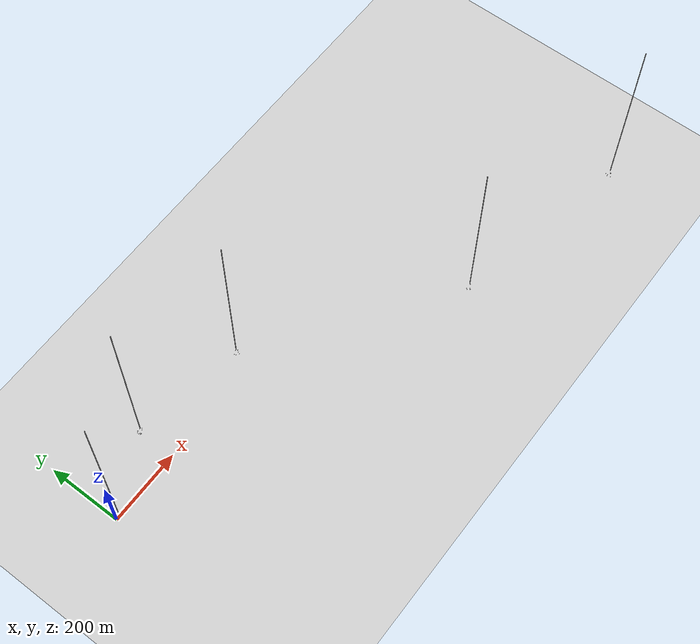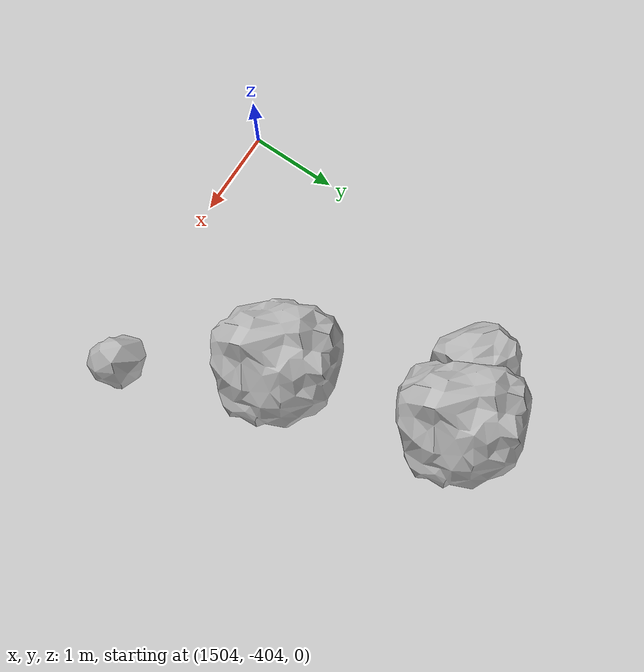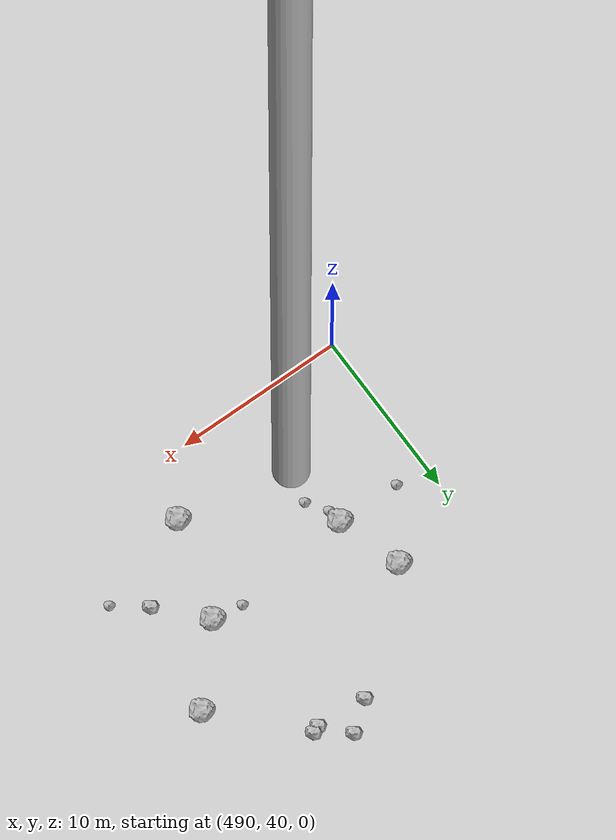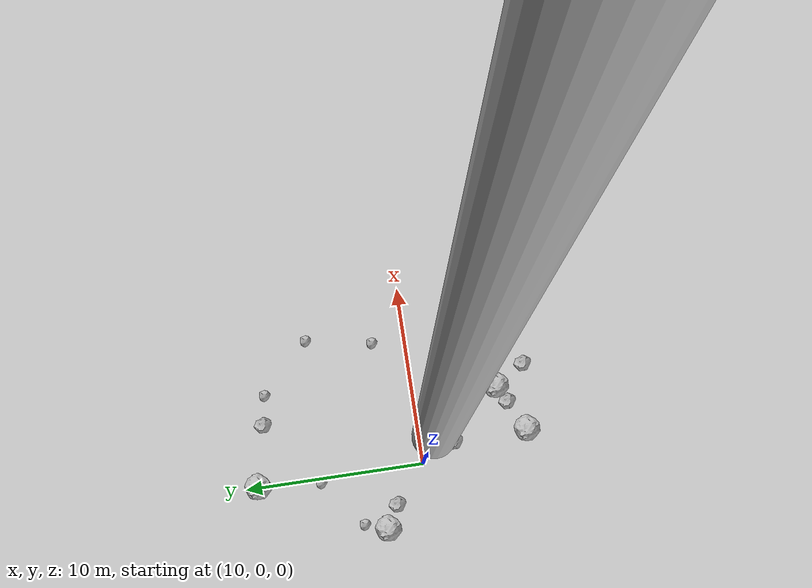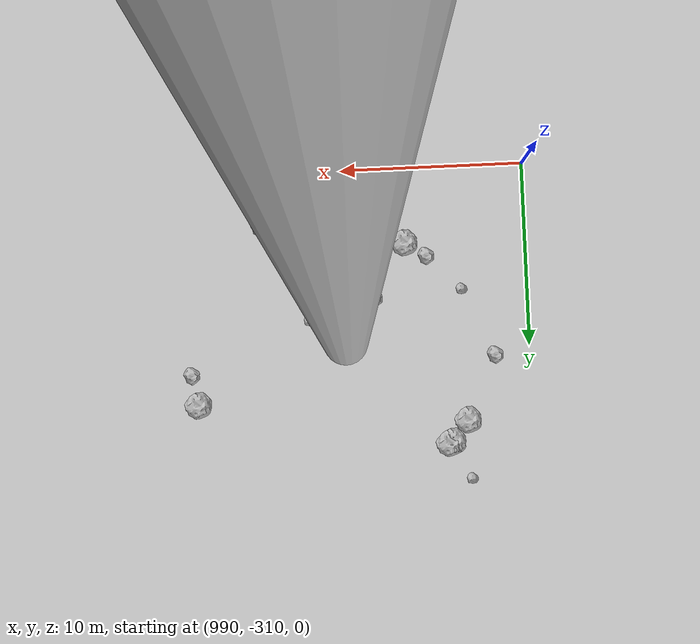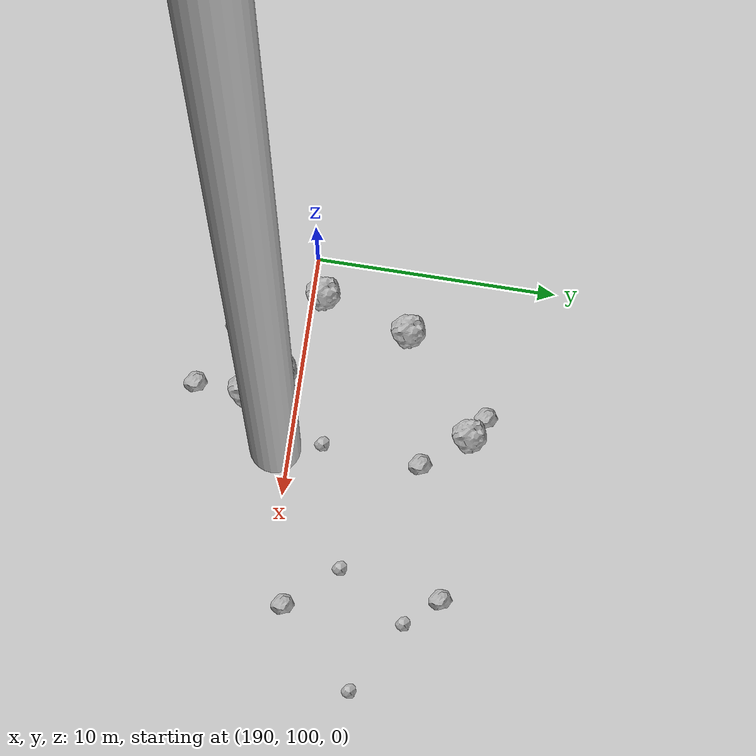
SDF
<?xml version="1.0" ?>
<sdf version="1.6">
  <world name="default">

    <include>
      <uri>model://custom_ground</uri>
    </include>

    <include>
      <uri>model://sun</uri>
    </include>

    <spherical_coordinates>
      <surface_model>EARTH_WGS84</surface_model>
      <latitude_deg>38.161479</latitude_deg>
      <longitude_deg>-122.454630</longitude_deg>
      <elevation>488.0</elevation>
      <heading_deg>90</heading_deg>
    </spherical_coordinates>

    <model name="rock1_0_0">
      <include>
        <uri>model://rock1</uri>
        <pose>6.761324325410953 2.4570703917150123 0.5 0 0 0</pose>
      </include>
    </model>
    <model name="rock1_0_1">
      <include>
        <uri>model://rock1</uri>
        <pose>11.145867360346113 -6.008105219785332 0.5 0 0 0</pose>
      </include>
    </model>
    <model name="rock1_0_2">
      <include>
        <uri>model://rock1</uri>
        <pose>12.629762699076288 -1.1100621825096049 0.5 0 0 0</pose>
      </include>
    </model>
    <model name="rock1_0_3">
      <include>
        <uri>model://rock1</uri>
        <pose>10.09270224581437 9.302511778859682 0.5 0 0 0</pose>
      </include>
    </model>
    <model name="rock1_0_4">
      <include>
        <uri>model://rock1</uri>
        <pose>13.799403424169022 -4.6532095279665775 0.5 0 0 0</pose>
      </include>
    </model>
    <model name="rock2_0_0">
      <include>
        <uri>model://rock2</uri>
        <pose>7.988989193930678 1.7728661270342787 0.3 0 0 0</pose>
      </include>
    </model>
    <model name="rock2_0_1">
      <include>
        <uri>model://rock2</uri>
        <pose>12.80303270683775 -5.161558802093484 0.3 0 0 0</pose>
      </include>
    </model>
    <model name="rock2_0_2">
      <include>
        <uri>model://rock2</uri>
        <pose>14.793795326502352 -6.330457723757186 0.3 0 0 0</pose>
      </include>
    </model>
    <model name="rock2_0_3">
      <include>
        <uri>model://rock2</uri>
        <pose>10.993265679500626 -1.8911631027724063 0.3 0 0 0</pose>
      </include>
    </model>
    <model name="rock2_0_4">
      <include>
        <uri>model://rock2</uri>
        <pose>13.460114744952705 8.579463573317312 0.3 0 0 0</pose>
      </include>
    </model>
    <model name="rock3_0_0">
      <include>
        <uri>model://rock3</uri>
        <pose>7.116375848112815 3.6954970534615406 0.2 0 0 0</pose>
      </include>
    </model>
    <model name="rock3_0_1">
      <include>
        <uri>model://rock3</uri>
        <pose>17.811568124794743 5.535211341224027 0.2 0 0 0</pose>
      </include>
    </model>
    <model name="rock3_0_2">
      <include>
        <uri>model://rock3</uri>
        <pose>17.14357852225258 1.8552160775630284 0.2 0 0 0</pose>
      </include>
    </model>
    <model name="rock3_0_3">
      <include>
        <uri>model://rock3</uri>
        <pose>9.768608480126739 5.7728517545996265 0.2 0 0 0</pose>
      </include>
    </model>
    <model name="rock3_0_4">
      <include>
        <uri>model://rock3</uri>
        <pose>15.07848013361773 8.243015156359057 0.2 0 0 0</pose>
      </include>
    </model>
    <model name="rock1_1_0">
      <include>
        <uri>model://rock1</uri>
        <pose>195.9210693004908 97.81350100503116 0.5 0 0 0</pose>
      </include>
    </model>
    <model name="rock1_1_1">
      <include>
        <uri>model://rock1</uri>
        <pose>192.50283560201015 104.17327700042779 0.5 0 0 0</pose>
      </include>
    </model>
    <model name="rock1_1_2">
      <include>
        <uri>model://rock1</uri>
        <pose>191.46849575288817 100.42262592058995 0.5 0 0 0</pose>
      </include>
    </model>
    <model name="rock1_1_3">
      <include>
        <uri>model://rock1</uri>
        <pose>196.45954988485366 107.3392766847084 0.5 0 0 0</pose>
      </include>
    </model>
    <model name="rock1_1_4">
      <include>
        <uri>model://rock1</uri>
        <pose>194.9385862506918 99.13549651221554 0.5 0 0 0</pose>
      </include>
    </model>
    <model name="rock2_1_0">
      <include>
        <uri>model://rock2</uri>
        <pose>197.9115668666902 105.50015973303618 0.3 0 0 0</pose>
      </include>
    </model>
    <model name="rock2_1_1">
      <include>
        <uri>model://rock2</uri>
        <pose>195.88199343390818 95.73068147286787 0.3 0 0 0</pose>
      </include>
    </model>
    <model name="rock2_1_2">
      <include>
        <uri>model://rock2</uri>
        <pose>203.36710523092293 107.16967173989985 0.3 0 0 0</pose>
      </include>
    </model>
    <model name="rock2_1_3">
      <include>
        <uri>model://rock2</uri>
        <pose>195.5909850583067 107.9185544122391 0.3 0 0 0</pose>
      </include>
    </model>
    <model name="rock2_1_4">
      <include>
        <uri>model://rock2</uri>
        <pose>204.52338760917573 100.71820295860002 0.3 0 0 0</pose>
      </include>
    </model>
    <model name="rock3_1_0">
      <include>
        <uri>model://rock3</uri>
        <pose>207.66467966450216 103.95844410427976 0.2 0 0 0</pose>
      </include>
    </model>
    <model name="rock3_1_1">
      <include>
        <uri>model://rock3</uri>
        <pose>204.5691272051909 105.76502876039191 0.2 0 0 0</pose>
      </include>
    </model>
    <model name="rock3_1_2">
      <include>
        <uri>model://rock3</uri>
        <pose>193.26282537772371 96.89294796680338 0.2 0 0 0</pose>
      </include>
    </model>
    <model name="rock3_1_3">
      <include>
        <uri>model://rock3</uri>
        <pose>197.64170653919064 101.31667281233665 0.2 0 0 0</pose>
      </include>
    </model>
    <model name="rock3_1_4">
      <include>
        <uri>model://rock3</uri>
        <pose>202.6738678298094 102.82193992233883 0.2 0 0 0</pose>
      </include>
    </model>
    <model name="rock1_2_0">
      <include>
        <uri>model://rock1</uri>
        <pose>504.67021196349094 49.087997795261856 0.5 0 0 0</pose>
      </include>
    </model>
    <model name="rock1_2_1">
      <include>
        <uri>model://rock1</uri>
        <pose>495.74817429963434 48.60709991895837 0.5 0 0 0</pose>
      </include>
    </model>
    <model name="rock1_2_2">
      <include>
        <uri>model://rock1</uri>
        <pose>502.86147004866876 43.322964352687436 0.5 0 0 0</pose>
      </include>
    </model>
    <model name="rock1_2_3">
      <include>
        <uri>model://rock1</uri>
        <pose>508.1901793558149 52.97803818031589 0.5 0 0 0</pose>
      </include>
    </model>
    <model name="rock1_2_4">
      <include>
        <uri>model://rock1</uri>
        <pose>494.5612740045438 52.443005990167215 0.5 0 0 0</pose>
      </include>
    </model>
    <model name="rock2_2_0">
      <include>
        <uri>model://rock2</uri>
        <pose>502.19067345759237 58.8318917384028 0.3 0 0 0</pose>
      </include>
    </model>
    <model name="rock2_2_1">
      <include>
        <uri>model://rock2</uri>
        <pose>500.5600595787636 57.57939663022526 0.3 0 0 0</pose>
      </include>
    </model>
    <model name="rock2_2_2">
      <include>
        <uri>model://rock2</uri>
        <pose>506.9592930657798 46.53769670074662 0.3 0 0 0</pose>
      </include>
    </model>
    <model name="rock2_2_3">
      <include>
        <uri>model://rock2</uri>
        <pose>503.5263577122133 57.36019032001575 0.3 0 0 0</pose>
      </include>
    </model>
    <model name="rock2_2_4">
      <include>
        <uri>model://rock2</uri>
        <pose>503.9507480297773 57.534110960397044 0.3 0 0 0</pose>
      </include>
    </model>
    <model name="rock3_2_0">
      <include>
        <uri>model://rock3</uri>
        <pose>495.8090290339916 47.70834932278751 0.2 0 0 0</pose>
      </include>
    </model>
    <model name="rock3_2_1">
      <include>
        <uri>model://rock3</uri>
        <pose>502.794020082108 49.31377556322652 0.2 0 0 0</pose>
      </include>
    </model>
    <model name="rock3_2_2">
      <include>
        <uri>model://rock3</uri>
        <pose>491.9180624154314 48.6597271307052 0.2 0 0 0</pose>
      </include>
    </model>
    <model name="rock3_2_3">
      <include>
        <uri>model://rock3</uri>
        <pose>508.7078089509225 45.09966563251269 0.2 0 0 0</pose>
      </include>
    </model>
    <model name="rock3_2_4">
      <include>
        <uri>model://rock3</uri>
        <pose>496.5948467478325 46.53553093442562 0.2 0 0 0</pose>
      </include>
    </model>
    <model name="rock1_3_0">
      <include>
        <uri>model://rock1</uri>
        <pose>1008.2651112414949 -297.47307234927086 0.5 0 0 0</pose>
      </include>
    </model>
    <model name="rock1_3_1">
      <include>
        <uri>model://rock1</uri>
        <pose>994.4691103167215 -294.9318004841502 0.5 0 0 0</pose>
      </include>
    </model>
    <model name="rock1_3_2">
      <include>
        <uri>model://rock1</uri>
        <pose>994.6530886515816 -294.84599187057535 0.5 0 0 0</pose>
      </include>
    </model>
    <model name="rock1_3_3">
      <include>
        <uri>model://rock1</uri>
        <pose>996.6499801133638 -305.8845239248075 0.5 0 0 0</pose>
      </include>
    </model>
    <model name="rock1_3_4">
      <include>
        <uri>model://rock1</uri>
        <pose>993.5792073887742 -296.0749650952073 0.5 0 0 0</pose>
      </include>
    </model>
    <model name="rock2_3_0">
      <include>
        <uri>model://rock2</uri>
        <pose>995.4735466172724 -305.12687137241267 0.3 0 0 0</pose>
      </include>
    </model>
    <model name="rock2_3_1">
      <include>
        <uri>model://rock2</uri>
        <pose>1004.5659338364442 -307.0884342037009 0.3 0 0 0</pose>
      </include>
    </model>
    <model name="rock2_3_2">
      <include>
        <uri>model://rock2</uri>
        <pose>991.9182230096734 -299.56265635691057 0.3 0 0 0</pose>
      </include>
    </model>
    <model name="rock2_3_3">
      <include>
        <uri>model://rock2</uri>
        <pose>1008.5640636209191 -299.1026652393314 0.3 0 0 0</pose>
      </include>
    </model>
    <model name="rock2_3_4">
      <include>
        <uri>model://rock2</uri>
        <pose>998.3941756459413 -302.9232804555775 0.3 0 0 0</pose>
      </include>
    </model>
    <model name="rock3_3_0">
      <include>
        <uri>model://rock3</uri>
        <pose>1000.0514596572904 -306.996711070951 0.2 0 0 0</pose>
      </include>
    </model>
    <model name="rock3_3_1">
      <include>
        <uri>model://rock3</uri>
        <pose>1003.0251519940457 -305.7685088515493 0.2 0 0 0</pose>
      </include>
    </model>
    <model name="rock3_3_2">
      <include>
        <uri>model://rock3</uri>
        <pose>993.5835595511202 -303.2781918864891 0.2 0 0 0</pose>
      </include>
    </model>
    <model name="rock3_3_3">
      <include>
        <uri>model://rock3</uri>
        <pose>993.439084097992 -292.8865402063368 0.2 0 0 0</pose>
      </include>
    </model>
    <model name="rock3_3_4">
      <include>
        <uri>model://rock3</uri>
        <pose>1001.9759862309658 -301.8871113550566 0.2 0 0 0</pose>
      </include>
    </model>
    <model name="rock1_4_0">
      <include>
        <uri>model://rock1</uri>
        <pose>1495.3499427458646 -406.787397257271 0.5 0 0 0</pose>
      </include>
    </model>
    <model name="rock1_4_1">
      <include>
        <uri>model://rock1</uri>
        <pose>1506.1582018607476 -402.2879814229247 0.5 0 0 0</pose>
      </include>
    </model>
    <model name="rock1_4_2">
      <include>
        <uri>model://rock1</uri>
        <pose>1501.6316058506548 -395.08573055203374 0.5 0 0 0</pose>
      </include>
    </model>
    <model name="rock1_4_3">
      <include>
        <uri>model://rock1</uri>
        <pose>1505.6010392714363 -400.28886881983215 0.5 0 0 0</pose>
      </include>
    </model>
    <model name="rock1_4_4">
      <include>
        <uri>model://rock1</uri>
        <pose>1499.1520336445565 -405.4106496296299 0.5 0 0 0</pose>
      </include>
    </model>
    <model name="rock2_4_0">
      <include>
        <uri>model://rock2</uri>
        <pose>1504.865032254529 -400.4538801027639 0.3 0 0 0</pose>
      </include>
    </model>
    <model name="rock2_4_1">
      <include>
        <uri>model://rock2</uri>
        <pose>1498.6845209509938 -409.401425821521 0.3 0 0 0</pose>
      </include>
    </model>
    <model name="rock2_4_2">
      <include>
        <uri>model://rock2</uri>
        <pose>1497.9248729233348 -391.3995860861406 0.3 0 0 0</pose>
      </include>
    </model>
    <model name="rock2_4_3">
      <include>
        <uri>model://rock2</uri>
        <pose>1493.5986118631567 -397.8067780291454 0.3 0 0 0</pose>
      </include>
    </model>
    <model name="rock2_4_4">
      <include>
        <uri>model://rock2</uri>
        <pose>1508.785640138984 -396.38337215627666 0.3 0 0 0</pose>
      </include>
    </model>
    <model name="rock3_4_0">
      <include>
        <uri>model://rock3</uri>
        <pose>1497.7187020991435 -397.0885142776331 0.2 0 0 0</pose>
      </include>
    </model>
    <model name="rock3_4_1">
      <include>
        <uri>model://rock3</uri>
        <pose>1494.6804279417972 -401.1655256550286 0.2 0 0 0</pose>
      </include>
    </model>
    <model name="rock3_4_2">
      <include>
        <uri>model://rock3</uri>
        <pose>1492.6881288975692 -398.38027995532474 0.2 0 0 0</pose>
      </include>
    </model>
    <model name="rock3_4_3">
      <include>
        <uri>model://rock3</uri>
        <pose>1507.0539184756833 -403.81625344339056 0.2 0 0 0</pose>
      </include>
    </model>
    <model name="rock3_4_4">
      <include>
        <uri>model://rock3</uri>
        <pose>1499.174241865005 -395.65328692157703 0.2 0 0 0</pose>
      </include>
    </model>

    <model name="cylinder_1">
      <static>true</static>
      <link name="link">
        <visual name="visual">
          <geometry>
            <cylinder>
              <radius>1</radius>
              <length>500</length>
            </cylinder>
          </geometry>
        </visual>
      </link>
      <pose>10 0 270 0 0 0</pose>
    </model>

    <model name="cylinder_2">
      <static>true</static>
      <link name="link">
        <visual name="visual">
          <geometry>
            <cylinder>
              <radius>1</radius>
              <length>500</length>
            </cylinder>
          </geometry>
        </visual>
      </link>
      <pose>200 100 270 0 0 0</pose>
    </model>

    <model name="cylinder_3">
      <static>true</static>
      <link name="link">
        <visual name="visual">
          <geometry>
            <cylinder>
              <radius>1</radius>
              <length>500</length>
            </cylinder>
          </geometry>
        </visual>
      </link>
      <pose>500 50 270 0 0 0</pose>
    </model>

    <model name="cylinder_4">
      <static>true</static>
      <link name="link">
        <visual name="visual">
          <geometry>
            <cylinder>
              <radius>1</radius>
              <length>500</length>
            </cylinder>
          </geometry>
        </visual>
      </link>
      <pose>1000 -300 270 0 0 0</pose>
    </model>

    <model name="cylinder_5">
      <static>true</static>
      <link name="link">
        <visual name="visual">
          <geometry>
            <cylinder>
              <radius>1</radius>
              <length>500</length>
            </cylinder>
          </geometry>
        </visual>
      </link>
      <pose>1500 -400 270 0 0 0</pose>
    </model>

  </world>
</sdf>

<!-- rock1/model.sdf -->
<sdf version="1.6">
  <model name="rock1">
    <static>true</static> <!-- Set to true if the model should not move -->
    <pose>0 0 0 0 0 0</pose>

    <!--z offset is 0.5 for full scale-->

    <link name="link">
      <collision name="rock1_collision">
        <geometry>
          <mesh>
            <uri>model://meshes/rock1.dae</uri>
          </mesh>
        </geometry>
      </collision>
      <visual name="rock1_visual">
        <geometry>
          <mesh>
            <uri>model://meshes/rock1.dae</uri>
          </mesh>
        </geometry>
        <material>
          <script>
            <uri>model://materials/scripts/sand_pebbles.material</uri>
            <name>custom_ground/Image</name>
          </script>
        </material>
      </visual>
    </link>
  </model>
</sdf>

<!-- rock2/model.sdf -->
<sdf version="1.6">
  <model name="rock2">
    <static>true</static> <!-- Set to true if the model should not move -->
    <pose>0 0 0 0 0 0</pose>

    <!--z offset is 0.3 for full scale-->

    <link name="link">
      <collision name="rock2_collision">
        <geometry>
          <mesh>
            <uri>model://meshes/rock2.dae</uri>
          </mesh>
        </geometry>
      </collision>
      <visual name="rock2_visual">
        <geometry>
          <mesh>
            <uri>model://meshes/rock2.dae</uri>
          </mesh>
        </geometry>
        <material>
          <script>
            <uri>model://materials/scripts/sand_pebbles.material</uri>
            <name>custom_ground/Image</name>
          </script>
        </material>
      </visual>
    </link>
  </model>
</sdf>

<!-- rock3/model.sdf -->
<sdf version="1.6">
  <model name="rock3">
    <static>true</static> <!-- Set to true if the model should not move -->
    <pose>0 0 0 0 0 0</pose>

    <!--z offset is 0.2 for full scale-->

    <link name="link">
      <collision name="rock3_collision">
        <geometry>
          <mesh>
            <uri>model://meshes/rock3.dae</uri>
          </mesh>
        </geometry>
      </collision>
      <visual name="rock3_visual">
        <geometry>
          <mesh>
            <uri>model://meshes/rock3.dae</uri>
          </mesh>
        </geometry>
        <material>
          <script>
            <uri>model://materials/scripts/sand_pebbles.material</uri>
            <name>custom_ground/Image</name>
          </script>
        </material>
      </visual>
    </link>
  </model>
</sdf>

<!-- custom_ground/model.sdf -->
<sdf version="1.6">
  <model name="custom_ground">
    <static>true</static> <!-- Ground is static and immovable -->
    <link name="ground_link">
      <pose>240 0 0 0 0 0</pose> <!-- Position and orientation relative to the world -->
      <!-- Visual Representation -->
      <visual name="ground_visual">
        <geometry>
          <plane>
            <normal>0 0 1</normal> <!-- Upward facing plane -->
            <size>500 500</size> <!-- Size of the plane -->
          </plane>
        </geometry>
        <material>
          <script>
            <uri>model://materials/scripts/sand_pebbles.material</uri>
            <name>custom_ground/Image</name>
          </script>
        </material>
      </visual>

      <!-- Collision Representation -->
      <collision name="ground_collision">
        <geometry>
          <plane>
            <normal>0 0 1</normal>
            <size>100 100</size>
          </plane>
        </geometry>
      </collision>

    </link>
  </model>
</sdf>
